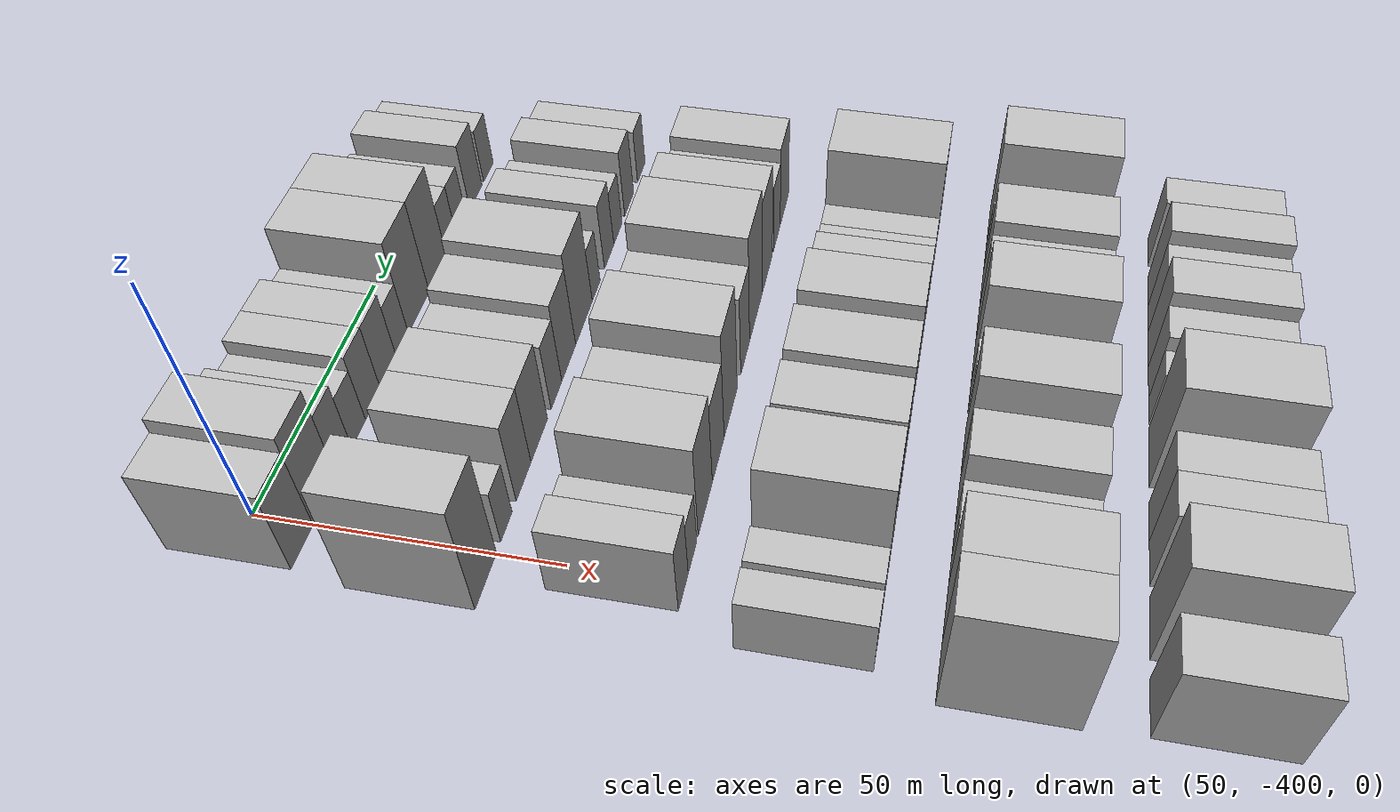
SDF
<sdf version="1.6">
 <world name="default">
  <model name="building_12">
   <static>1</static>
   <pose>50.0000 -404.1305 0 0.000000 0.000000 0.000000</pose>
   <link name="link">
    <pose>0 0 9.00 0 0 0</pose>
    <collision name="collision"><geometry><box><size>20.0000 8.0444 18.0000</size></box></geometry></collision>
    <visual name="visual">
     <cast_shadows>0</cast_shadows>
     <geometry><box><size>20.0000 8.0444 18.0000</size></box></geometry>
     <material>
      <script>
       <uri>model://HANNAS_wall/materials/scripts</uri>
       <uri>model://HANNAS_wall/materials/textures</uri>
       <name>vrc/HANNAS_wall</name>
      </script>
     </material>
    </visual>
   </link>
  </model>
  <model name="building_13">
   <static>1</static>
   <pose>50.0000 -395.5636 0 0.000000 0.000000 0.000000</pose>
   <link name="link">
    <pose>0 0 10.50 0 0 0</pose>
    <collision name="collision"><geometry><box><size>20.0000 9.0895 21.0000</size></box></geometry></collision>
    <visual name="visual">
     <cast_shadows>0</cast_shadows>
     <geometry><box><size>20.0000 9.0895 21.0000</size></box></geometry>
     <material>
      <script>
       <uri>model://HANNAS_wall/materials/scripts</uri>
       <uri>model://HANNAS_wall/materials/textures</uri>
       <name>vrc/HANNAS_wall</name>
      </script>
     </material>
    </visual>
   </link>
  </model>
  <model name="building_14">
   <static>1</static>
   <pose>50.0000 -387.9882 0 0.000000 0.000000 0.000000</pose>
   <link name="link">
    <pose>0 0 7.50 0 0 0</pose>
    <collision name="collision"><geometry><box><size>20.0000 6.0613 15.0000</size></box></geometry></collision>
    <visual name="visual">
     <cast_shadows>0</cast_shadows>
     <geometry><box><size>20.0000 6.0613 15.0000</size></box></geometry>
     <material>
      <script>
       <uri>model://HANNAS_wall/materials/scripts</uri>
       <uri>model://HANNAS_wall/materials/textures</uri>
       <name>vrc/HANNAS_wall</name>
      </script>
     </material>
    </visual>
   </link>
  </model>
  <model name="building_15">
   <static>1</static>
   <pose>50.0000 -382.0741 0 0.000000 0.000000 0.000000</pose>
   <link name="link">
    <pose>0 0 6.00 0 0 0</pose>
    <collision name="collision"><geometry><box><size>20.0000 5.7669 12.0000</size></box></geometry></collision>
    <visual name="visual">
     <cast_shadows>0</cast_shadows>
     <geometry><box><size>20.0000 5.7669 12.0000</size></box></geometry>
     <material>
      <script>
       <uri>model://HANNAS_wall/materials/scripts</uri>
       <uri>model://HANNAS_wall/materials/textures</uri>
       <name>vrc/HANNAS_wall</name>
      </script>
     </material>
    </visual>
   </link>
  </model>
  <model name="building_16">
   <static>1</static>
   <pose>50.0000 -375.9104 0 0.000000 0.000000 0.000000</pose>
   <link name="link">
    <pose>0 0 7.50 0 0 0</pose>
    <collision name="collision"><geometry><box><size>20.0000 6.5604 15.0000</size></box></geometry></collision>
    <visual name="visual">
     <cast_shadows>0</cast_shadows>
     <geometry><box><size>20.0000 6.5604 15.0000</size></box></geometry>
     <material>
      <script>
       <uri>model://HANNAS_wall/materials/scripts</uri>
       <uri>model://HANNAS_wall/materials/textures</uri>
       <name>vrc/HANNAS_wall</name>
      </script>
     </material>
    </visual>
   </link>
  </model>
  <model name="building_17">
   <static>1</static>
   <pose>50.0000 -369.0425 0 0.000000 0.000000 0.000000</pose>
   <link name="link">
    <pose>0 0 7.50 0 0 0</pose>
    <collision name="collision"><geometry><box><size>20.0000 7.1755 15.0000</size></box></geometry></collision>
    <visual name="visual">
     <cast_shadows>0</cast_shadows>
     <geometry><box><size>20.0000 7.1755 15.0000</size></box></geometry>
     <material>
      <script>
       <uri>model://HANNAS_wall/materials/scripts</uri>
       <uri>model://HANNAS_wall/materials/textures</uri>
       <name>vrc/HANNAS_wall</name>
      </script>
     </material>
    </visual>
   </link>
  </model>
  <model name="building_18">
   <static>1</static>
   <pose>50.0000 -362.6450 0 0.000000 0.000000 0.000000</pose>
   <link name="link">
    <pose>0 0 6.00 0 0 0</pose>
    <collision name="collision"><geometry><box><size>20.0000 5.6195 12.0000</size></box></geometry></collision>
    <visual name="visual">
     <cast_shadows>0</cast_shadows>
     <geometry><box><size>20.0000 5.6195 12.0000</size></box></geometry>
     <material>
      <script>
       <uri>model://HANNAS_wall/materials/scripts</uri>
       <uri>model://HANNAS_wall/materials/textures</uri>
       <name>vrc/HANNAS_wall</name>
      </script>
     </material>
    </visual>
   </link>
  </model>
  <model name="building_19">
   <static>1</static>
   <pose>50.0000 -354.7510 0 0.000000 0.000000 0.000000</pose>
   <link name="link">
    <pose>0 0 10.50 0 0 0</pose>
    <collision name="collision"><geometry><box><size>20.0000 10.1686 21.0000</size></box></geometry></collision>
    <visual name="visual">
     <cast_shadows>0</cast_shadows>
     <geometry><box><size>20.0000 10.1686 21.0000</size></box></geometry>
     <material>
      <script>
       <uri>model://HANNAS_wall/materials/scripts</uri>
       <uri>model://HANNAS_wall/materials/textures</uri>
       <name>vrc/HANNAS_wall</name>
      </script>
     </material>
    </visual>
   </link>
  </model>
  <model name="building_20">
   <static>1</static>
   <pose>50.0000 -345.1235 0 0.000000 0.000000 0.000000</pose>
   <link name="link">
    <pose>0 0 10.50 0 0 0</pose>
    <collision name="collision"><geometry><box><size>20.0000 9.0865 21.0000</size></box></geometry></collision>
    <visual name="visual">
     <cast_shadows>0</cast_shadows>
     <geometry><box><size>20.0000 9.0865 21.0000</size></box></geometry>
     <material>
      <script>
       <uri>model://HANNAS_wall/materials/scripts</uri>
       <uri>model://HANNAS_wall/materials/textures</uri>
       <name>vrc/HANNAS_wall</name>
      </script>
     </material>
    </visual>
   </link>
  </model>
  <model name="building_21">
   <static>1</static>
   <pose>50.0000 -337.9121 0 0.000000 0.000000 0.000000</pose>
   <link name="link">
    <pose>0 0 6.00 0 0 0</pose>
    <collision name="collision"><geometry><box><size>20.0000 5.3363 12.0000</size></box></geometry></collision>
    <visual name="visual">
     <cast_shadows>0</cast_shadows>
     <geometry><box><size>20.0000 5.3363 12.0000</size></box></geometry>
     <material>
      <script>
       <uri>model://HANNAS_wall/materials/scripts</uri>
       <uri>model://HANNAS_wall/materials/textures</uri>
       <name>vrc/HANNAS_wall</name>
      </script>
     </material>
    </visual>
   </link>
  </model>
  <model name="building_22">
   <static>1</static>
   <pose>50.0000 -332.4888 0 0.000000 0.000000 0.000000</pose>
   <link name="link">
    <pose>0 0 6.00 0 0 0</pose>
    <collision name="collision"><geometry><box><size>20.0000 5.5102 12.0000</size></box></geometry></collision>
    <visual name="visual">
     <cast_shadows>0</cast_shadows>
     <geometry><box><size>20.0000 5.5102 12.0000</size></box></geometry>
     <material>
      <script>
       <uri>model://HANNAS_wall/materials/scripts</uri>
       <uri>model://HANNAS_wall/materials/textures</uri>
       <name>vrc/HANNAS_wall</name>
      </script>
     </material>
    </visual>
   </link>
  </model>
  <model name="building_23">
   <static>1</static>
   <pose>50.0000 -324.2608 0 0.000000 0.000000 0.000000</pose>
   <link name="link">
    <pose>0 0 7.50 0 0 0</pose>
    <collision name="collision"><geometry><box><size>20.0000 6.9459 15.0000</size></box></geometry></collision>
    <visual name="visual">
     <cast_shadows>0</cast_shadows>
     <geometry><box><size>20.0000 6.9459 15.0000</size></box></geometry>
     <material>
      <script>
       <uri>model://HANNAS_wall/materials/scripts</uri>
       <uri>model://HANNAS_wall/materials/textures</uri>
       <name>vrc/HANNAS_wall</name>
      </script>
     </material>
    </visual>
   </link>
  </model>
  <model name="building_24">
   <static>1</static>
   <pose>50.0000 -316.9308 0 0.000000 0.000000 0.000000</pose>
   <link name="link">
    <pose>0 0 6.00 0 0 0</pose>
    <collision name="collision"><geometry><box><size>20.0000 5.7139 12.0000</size></box></geometry></collision>
    <visual name="visual">
     <cast_shadows>0</cast_shadows>
     <geometry><box><size>20.0000 5.7139 12.0000</size></box></geometry>
     <material>
      <script>
       <uri>model://HANNAS_wall/materials/scripts</uri>
       <uri>model://HANNAS_wall/materials/textures</uri>
       <name>vrc/HANNAS_wall</name>
      </script>
     </material>
    </visual>
   </link>
  </model>
  <model name="building_118">
   <static>1</static>
   <pose>79.0000 -404.7210 0 0.000000 0.000000 0.000000</pose>
   <link name="link">
    <pose>0 0 12.00 0 0 0</pose>
    <collision name="collision"><geometry><box><size>20.0000 9.8705 24.0000</size></box></geometry></collision>
    <visual name="visual">
     <cast_shadows>0</cast_shadows>
     <geometry><box><size>20.0000 9.8705 24.0000</size></box></geometry>
     <material>
      <script>
       <uri>model://HANNAS_wall/materials/scripts</uri>
       <uri>model://HANNAS_wall/materials/textures</uri>
       <name>vrc/HANNAS_wall</name>
      </script>
     </material>
    </visual>
   </link>
  </model>
  <model name="building_119">
   <static>1</static>
   <pose>79.0000 -395.0064 0 0.000000 0.000000 0.000000</pose>
   <link name="link">
    <pose>0 0 6.00 0 0 0</pose>
    <collision name="collision"><geometry><box><size>20.0000 5.5586 12.0000</size></box></geometry></collision>
    <visual name="visual">
     <cast_shadows>0</cast_shadows>
     <geometry><box><size>20.0000 5.5586 12.0000</size></box></geometry>
     <material>
      <script>
       <uri>model://HANNAS_wall/materials/scripts</uri>
       <uri>model://HANNAS_wall/materials/textures</uri>
       <name>vrc/HANNAS_wall</name>
      </script>
     </material>
    </visual>
   </link>
  </model>
  <model name="building_120">
   <static>1</static>
   <pose>79.0000 -386.3913 0 0.000000 0.000000 0.000000</pose>
   <link name="link">
    <pose>0 0 9.00 0 0 0</pose>
    <collision name="collision"><geometry><box><size>20.0000 7.6715 18.0000</size></box></geometry></collision>
    <visual name="visual">
     <cast_shadows>0</cast_shadows>
     <geometry><box><size>20.0000 7.6715 18.0000</size></box></geometry>
     <material>
      <script>
       <uri>model://HANNAS_wall/materials/scripts</uri>
       <uri>model://HANNAS_wall/materials/textures</uri>
       <name>vrc/HANNAS_wall</name>
      </script>
     </material>
    </visual>
   </link>
  </model>
  <model name="building_121">
   <static>1</static>
   <pose>79.0000 -378.0632 0 0.000000 0.000000 0.000000</pose>
   <link name="link">
    <pose>0 0 9.00 0 0 0</pose>
    <collision name="collision"><geometry><box><size>20.0000 8.9849 18.0000</size></box></geometry></collision>
    <visual name="visual">
     <cast_shadows>0</cast_shadows>
     <geometry><box><size>20.0000 8.9849 18.0000</size></box></geometry>
     <material>
      <script>
       <uri>model://HANNAS_wall/materials/scripts</uri>
       <uri>model://HANNAS_wall/materials/textures</uri>
       <name>vrc/HANNAS_wall</name>
      </script>
     </material>
    </visual>
   </link>
  </model>
  <model name="building_122">
   <static>1</static>
   <pose>79.0000 -368.4958 0 0.000000 0.000000 0.000000</pose>
   <link name="link">
    <pose>0 0 7.50 0 0 0</pose>
    <collision name="collision"><geometry><box><size>20.0000 6.1499 15.0000</size></box></geometry></collision>
    <visual name="visual">
     <cast_shadows>0</cast_shadows>
     <geometry><box><size>20.0000 6.1499 15.0000</size></box></geometry>
     <material>
      <script>
       <uri>model://HANNAS_wall/materials/scripts</uri>
       <uri>model://HANNAS_wall/materials/textures</uri>
       <name>vrc/HANNAS_wall</name>
      </script>
     </material>
    </visual>
   </link>
  </model>
  <model name="building_123">
   <static>1</static>
   <pose>79.0000 -361.2507 0 0.000000 0.000000 0.000000</pose>
   <link name="link">
    <pose>0 0 9.00 0 0 0</pose>
    <collision name="collision"><geometry><box><size>20.0000 8.3401 18.0000</size></box></geometry></collision>
    <visual name="visual">
     <cast_shadows>0</cast_shadows>
     <geometry><box><size>20.0000 8.3401 18.0000</size></box></geometry>
     <material>
      <script>
       <uri>model://HANNAS_wall/materials/scripts</uri>
       <uri>model://HANNAS_wall/materials/textures</uri>
       <name>vrc/HANNAS_wall</name>
      </script>
     </material>
    </visual>
   </link>
  </model>
  <model name="building_124">
   <static>1</static>
   <pose>79.0000 -351.8395 0 0.000000 0.000000 0.000000</pose>
   <link name="link">
    <pose>0 0 10.50 0 0 0</pose>
    <collision name="collision"><geometry><box><size>20.0000 10.4823 21.0000</size></box></geometry></collision>
    <visual name="visual">
     <cast_shadows>0</cast_shadows>
     <geometry><box><size>20.0000 10.4823 21.0000</size></box></geometry>
     <material>
      <script>
       <uri>model://HANNAS_wall/materials/scripts</uri>
       <uri>model://HANNAS_wall/materials/textures</uri>
       <name>vrc/HANNAS_wall</name>
      </script>
     </material>
    </visual>
   </link>
  </model>
  <model name="building_125">
   <static>1</static>
   <pose>79.0000 -344.0124 0 0.000000 0.000000 0.000000</pose>
   <link name="link">
    <pose>0 0 6.00 0 0 0</pose>
    <collision name="collision"><geometry><box><size>20.0000 5.1720 12.0000</size></box></geometry></collision>
    <visual name="visual">
     <cast_shadows>0</cast_shadows>
     <geometry><box><size>20.0000 5.1720 12.0000</size></box></geometry>
     <material>
      <script>
       <uri>model://HANNAS_wall/materials/scripts</uri>
       <uri>model://HANNAS_wall/materials/textures</uri>
       <name>vrc/HANNAS_wall</name>
      </script>
     </material>
    </visual>
   </link>
  </model>
  <model name="building_126">
   <static>1</static>
   <pose>79.0000 -335.1673 0 0.000000 0.000000 0.000000</pose>
   <link name="link">
    <pose>0 0 7.50 0 0 0</pose>
    <collision name="collision"><geometry><box><size>20.0000 6.5182 15.0000</size></box></geometry></collision>
    <visual name="visual">
     <cast_shadows>0</cast_shadows>
     <geometry><box><size>20.0000 6.5182 15.0000</size></box></geometry>
     <material>
      <script>
       <uri>model://HANNAS_wall/materials/scripts</uri>
       <uri>model://HANNAS_wall/materials/textures</uri>
       <name>vrc/HANNAS_wall</name>
      </script>
     </material>
    </visual>
   </link>
  </model>
  <model name="building_127">
   <static>1</static>
   <pose>79.0000 -329.0076 0 0.000000 0.000000 0.000000</pose>
   <link name="link">
    <pose>0 0 6.00 0 0 0</pose>
    <collision name="collision"><geometry><box><size>20.0000 5.8012 12.0000</size></box></geometry></collision>
    <visual name="visual">
     <cast_shadows>0</cast_shadows>
     <geometry><box><size>20.0000 5.8012 12.0000</size></box></geometry>
     <material>
      <script>
       <uri>model://HANNAS_wall/materials/scripts</uri>
       <uri>model://HANNAS_wall/materials/textures</uri>
       <name>vrc/HANNAS_wall</name>
      </script>
     </material>
    </visual>
   </link>
  </model>
  <model name="building_128">
   <static>1</static>
   <pose>79.0000 -320.7676 0 0.000000 0.000000 0.000000</pose>
   <link name="link">
    <pose>0 0 7.50 0 0 0</pose>
    <collision name="collision"><geometry><box><size>20.0000 6.6788 15.0000</size></box></geometry></collision>
    <visual name="visual">
     <cast_shadows>0</cast_shadows>
     <geometry><box><size>20.0000 6.6788 15.0000</size></box></geometry>
     <material>
      <script>
       <uri>model://HANNAS_wall/materials/scripts</uri>
       <uri>model://HANNAS_wall/materials/textures</uri>
       <name>vrc/HANNAS_wall</name>
      </script>
     </material>
    </visual>
   </link>
  </model>
  <model name="building_129">
   <static>1</static>
   <pose>79.0000 -311.4818 0 0.000000 0.000000 0.000000</pose>
   <link name="link">
    <pose>0 0 6.00 0 0 0</pose>
    <collision name="collision"><geometry><box><size>20.0000 5.8927 12.0000</size></box></geometry></collision>
    <visual name="visual">
     <cast_shadows>0</cast_shadows>
     <geometry><box><size>20.0000 5.8927 12.0000</size></box></geometry>
     <material>
      <script>
       <uri>model://HANNAS_wall/materials/scripts</uri>
       <uri>model://HANNAS_wall/materials/textures</uri>
       <name>vrc/HANNAS_wall</name>
      </script>
     </material>
    </visual>
   </link>
  </model>
  <model name="building_235">
   <static>1</static>
   <pose>108.0000 -401.2465 0 0.000000 0.000000 0.000000</pose>
   <link name="link">
    <pose>0 0 7.50 0 0 0</pose>
    <collision name="collision"><geometry><box><size>20.0000 6.4250 15.0000</size></box></geometry></collision>
    <visual name="visual">
     <cast_shadows>0</cast_shadows>
     <geometry><box><size>20.0000 6.4250 15.0000</size></box></geometry>
     <material>
      <script>
       <uri>model://HANNAS_wall/materials/scripts</uri>
       <uri>model://HANNAS_wall/materials/textures</uri>
       <name>vrc/HANNAS_wall</name>
      </script>
     </material>
    </visual>
   </link>
  </model>
  <model name="building_236">
   <static>1</static>
   <pose>108.0000 -395.1579 0 0.000000 0.000000 0.000000</pose>
   <link name="link">
    <pose>0 0 6.00 0 0 0</pose>
    <collision name="collision"><geometry><box><size>20.0000 5.7523 12.0000</size></box></geometry></collision>
    <visual name="visual">
     <cast_shadows>0</cast_shadows>
     <geometry><box><size>20.0000 5.7523 12.0000</size></box></geometry>
     <material>
      <script>
       <uri>model://HANNAS_wall/materials/scripts</uri>
       <uri>model://HANNAS_wall/materials/textures</uri>
       <name>vrc/HANNAS_wall</name>
      </script>
     </material>
    </visual>
   </link>
  </model>
  <model name="building_237">
   <static>1</static>
   <pose>108.0000 -386.1965 0 0.000000 0.000000 0.000000</pose>
   <link name="link">
    <pose>0 0 10.50 0 0 0</pose>
    <collision name="collision"><geometry><box><size>20.0000 10.1705 21.0000</size></box></geometry></collision>
    <visual name="visual">
     <cast_shadows>0</cast_shadows>
     <geometry><box><size>20.0000 10.1705 21.0000</size></box></geometry>
     <material>
      <script>
       <uri>model://HANNAS_wall/materials/scripts</uri>
       <uri>model://HANNAS_wall/materials/textures</uri>
       <name>vrc/HANNAS_wall</name>
      </script>
     </material>
    </visual>
   </link>
  </model>
  <model name="building_238">
   <static>1</static>
   <pose>108.0000 -376.6138 0 0.000000 0.000000 0.000000</pose>
   <link name="link">
    <pose>0 0 9.00 0 0 0</pose>
    <collision name="collision"><geometry><box><size>20.0000 8.9950 18.0000</size></box></geometry></collision>
    <visual name="visual">
     <cast_shadows>0</cast_shadows>
     <geometry><box><size>20.0000 8.9950 18.0000</size></box></geometry>
     <material>
      <script>
       <uri>model://HANNAS_wall/materials/scripts</uri>
       <uri>model://HANNAS_wall/materials/textures</uri>
       <name>vrc/HANNAS_wall</name>
      </script>
     </material>
    </visual>
   </link>
  </model>
  <model name="building_239">
   <static>1</static>
   <pose>108.0000 -366.8445 0 0.000000 0.000000 0.000000</pose>
   <link name="link">
    <pose>0 0 12.00 0 0 0</pose>
    <collision name="collision"><geometry><box><size>20.0000 10.5434 24.0000</size></box></geometry></collision>
    <visual name="visual">
     <cast_shadows>0</cast_shadows>
     <geometry><box><size>20.0000 10.5434 24.0000</size></box></geometry>
     <material>
      <script>
       <uri>model://HANNAS_wall/materials/scripts</uri>
       <uri>model://HANNAS_wall/materials/textures</uri>
       <name>vrc/HANNAS_wall</name>
      </script>
     </material>
    </visual>
   </link>
  </model>
  <model name="building_240">
   <static>1</static>
   <pose>108.0000 -354.7363 0 0.000000 0.000000 0.000000</pose>
   <link name="link">
    <pose>0 0 9.00 0 0 0</pose>
    <collision name="collision"><geometry><box><size>20.0000 7.6730 18.0000</size></box></geometry></collision>
    <visual name="visual">
     <cast_shadows>0</cast_shadows>
     <geometry><box><size>20.0000 7.6730 18.0000</size></box></geometry>
     <material>
      <script>
       <uri>model://HANNAS_wall/materials/scripts</uri>
       <uri>model://HANNAS_wall/materials/textures</uri>
       <name>vrc/HANNAS_wall</name>
      </script>
     </material>
    </visual>
   </link>
  </model>
  <model name="building_241">
   <static>1</static>
   <pose>108.0000 -345.0989 0 0.000000 0.000000 0.000000</pose>
   <link name="link">
    <pose>0 0 12.00 0 0 0</pose>
    <collision name="collision"><geometry><box><size>20.0000 11.6019 24.0000</size></box></geometry></collision>
    <visual name="visual">
     <cast_shadows>0</cast_shadows>
     <geometry><box><size>20.0000 11.6019 24.0000</size></box></geometry>
     <material>
      <script>
       <uri>model://HANNAS_wall/materials/scripts</uri>
       <uri>model://HANNAS_wall/materials/textures</uri>
       <name>vrc/HANNAS_wall</name>
      </script>
     </material>
    </visual>
   </link>
  </model>
  <model name="building_242">
   <static>1</static>
   <pose>108.0000 -334.3625 0 0.000000 0.000000 0.000000</pose>
   <link name="link">
    <pose>0 0 10.50 0 0 0</pose>
    <collision name="collision"><geometry><box><size>20.0000 9.8709 21.0000</size></box></geometry></collision>
    <visual name="visual">
     <cast_shadows>0</cast_shadows>
     <geometry><box><size>20.0000 9.8709 21.0000</size></box></geometry>
     <material>
      <script>
       <uri>model://HANNAS_wall/materials/scripts</uri>
       <uri>model://HANNAS_wall/materials/textures</uri>
       <name>vrc/HANNAS_wall</name>
      </script>
     </material>
    </visual>
   </link>
  </model>
  <model name="building_243">
   <static>1</static>
   <pose>108.0000 -324.9108 0 0.000000 0.000000 0.000000</pose>
   <link name="link">
    <pose>0 0 7.50 0 0 0</pose>
    <collision name="collision"><geometry><box><size>20.0000 7.0324 15.0000</size></box></geometry></collision>
    <visual name="visual">
     <cast_shadows>0</cast_shadows>
     <geometry><box><size>20.0000 7.0324 15.0000</size></box></geometry>
     <material>
      <script>
       <uri>model://HANNAS_wall/materials/scripts</uri>
       <uri>model://HANNAS_wall/materials/textures</uri>
       <name>vrc/HANNAS_wall</name>
      </script>
     </material>
    </visual>
   </link>
  </model>
  <model name="building_244">
   <static>1</static>
   <pose>108.0000 -316.9666 0 0.000000 0.000000 0.000000</pose>
   <link name="link">
    <pose>0 0 9.00 0 0 0</pose>
    <collision name="collision"><geometry><box><size>20.0000 8.8561 18.0000</size></box></geometry></collision>
    <visual name="visual">
     <cast_shadows>0</cast_shadows>
     <geometry><box><size>20.0000 8.8561 18.0000</size></box></geometry>
     <material>
      <script>
       <uri>model://HANNAS_wall/materials/scripts</uri>
       <uri>model://HANNAS_wall/materials/textures</uri>
       <name>vrc/HANNAS_wall</name>
      </script>
     </material>
    </visual>
   </link>
  </model>
  <model name="building_347">
   <static>1</static>
   <pose>137.0000 -405.8618 0 0.000000 0.000000 0.000000</pose>
   <link name="link">
    <pose>0 0 6.00 0 0 0</pose>
    <collision name="collision"><geometry><box><size>20.0000 5.9171 12.0000</size></box></geometry></collision>
    <visual name="visual">
     <cast_shadows>0</cast_shadows>
     <geometry><box><size>20.0000 5.9171 12.0000</size></box></geometry>
     <material>
      <script>
       <uri>model://HANNAS_wall/materials/scripts</uri>
       <uri>model://HANNAS_wall/materials/textures</uri>
       <name>vrc/HANNAS_wall</name>
      </script>
     </material>
    </visual>
   </link>
  </model>
  <model name="building_348">
   <static>1</static>
   <pose>137.0000 -398.9384 0 0.000000 0.000000 0.000000</pose>
   <link name="link">
    <pose>0 0 6.00 0 0 0</pose>
    <collision name="collision"><geometry><box><size>20.0000 5.9296 12.0000</size></box></geometry></collision>
    <visual name="visual">
     <cast_shadows>0</cast_shadows>
     <geometry><box><size>20.0000 5.9296 12.0000</size></box></geometry>
     <material>
      <script>
       <uri>model://HANNAS_wall/materials/scripts</uri>
       <uri>model://HANNAS_wall/materials/textures</uri>
       <name>vrc/HANNAS_wall</name>
      </script>
     </material>
    </visual>
   </link>
  </model>
  <model name="building_349">
   <static>1</static>
   <pose>137.0000 -389.3503 0 0.000000 0.000000 0.000000</pose>
   <link name="link">
    <pose>0 0 12.00 0 0 0</pose>
    <collision name="collision"><geometry><box><size>20.0000 11.2467 24.0000</size></box></geometry></collision>
    <visual name="visual">
     <cast_shadows>0</cast_shadows>
     <geometry><box><size>20.0000 11.2467 24.0000</size></box></geometry>
     <material>
      <script>
       <uri>model://HANNAS_wall/materials/scripts</uri>
       <uri>model://HANNAS_wall/materials/textures</uri>
       <name>vrc/HANNAS_wall</name>
      </script>
     </material>
    </visual>
   </link>
  </model>
  <model name="building_350">
   <static>1</static>
   <pose>137.0000 -376.4297 0 0.000000 0.000000 0.000000</pose>
   <link name="link">
    <pose>0 0 10.50 0 0 0</pose>
    <collision name="collision"><geometry><box><size>20.0000 8.5944 21.0000</size></box></geometry></collision>
    <visual name="visual">
     <cast_shadows>0</cast_shadows>
     <geometry><box><size>20.0000 8.5944 21.0000</size></box></geometry>
     <material>
      <script>
       <uri>model://HANNAS_wall/materials/scripts</uri>
       <uri>model://HANNAS_wall/materials/textures</uri>
       <name>vrc/HANNAS_wall</name>
      </script>
     </material>
    </visual>
   </link>
  </model>
  <model name="building_351">
   <static>1</static>
   <pose>137.0000 -365.3390 0 0.000000 0.000000 0.000000</pose>
   <link name="link">
    <pose>0 0 10.50 0 0 0</pose>
    <collision name="collision"><geometry><box><size>20.0000 9.5871 21.0000</size></box></geometry></collision>
    <visual name="visual">
     <cast_shadows>0</cast_shadows>
     <geometry><box><size>20.0000 9.5871 21.0000</size></box></geometry>
     <material>
      <script>
       <uri>model://HANNAS_wall/materials/scripts</uri>
       <uri>model://HANNAS_wall/materials/textures</uri>
       <name>vrc/HANNAS_wall</name>
      </script>
     </material>
    </visual>
   </link>
  </model>
  <model name="building_352">
   <static>1</static>
   <pose>137.0000 -352.7596 0 0.000000 0.000000 0.000000</pose>
   <link name="link">
    <pose>0 0 10.50 0 0 0</pose>
    <collision name="collision"><geometry><box><size>20.0000 9.5716 21.0000</size></box></geometry></collision>
    <visual name="visual">
     <cast_shadows>0</cast_shadows>
     <geometry><box><size>20.0000 9.5716 21.0000</size></box></geometry>
     <material>
      <script>
       <uri>model://HANNAS_wall/materials/scripts</uri>
       <uri>model://HANNAS_wall/materials/textures</uri>
       <name>vrc/HANNAS_wall</name>
      </script>
     </material>
    </visual>
   </link>
  </model>
  <model name="building_353">
   <static>1</static>
   <pose>137.0000 -341.2502 0 0.000000 0.000000 0.000000</pose>
   <link name="link">
    <pose>0 0 7.50 0 0 0</pose>
    <collision name="collision"><geometry><box><size>20.0000 7.4472 15.0000</size></box></geometry></collision>
    <visual name="visual">
     <cast_shadows>0</cast_shadows>
     <geometry><box><size>20.0000 7.4472 15.0000</size></box></geometry>
     <material>
      <script>
       <uri>model://HANNAS_wall/materials/scripts</uri>
       <uri>model://HANNAS_wall/materials/textures</uri>
       <name>vrc/HANNAS_wall</name>
      </script>
     </material>
    </visual>
   </link>
  </model>
  <model name="building_354">
   <static>1</static>
   <pose>137.0000 -334.9260 0 0.000000 0.000000 0.000000</pose>
   <link name="link">
    <pose>0 0 6.00 0 0 0</pose>
    <collision name="collision"><geometry><box><size>20.0000 5.2013 12.0000</size></box></geometry></collision>
    <visual name="visual">
     <cast_shadows>0</cast_shadows>
     <geometry><box><size>20.0000 5.2013 12.0000</size></box></geometry>
     <material>
      <script>
       <uri>model://HANNAS_wall/materials/scripts</uri>
       <uri>model://HANNAS_wall/materials/textures</uri>
       <name>vrc/HANNAS_wall</name>
      </script>
     </material>
    </visual>
   </link>
  </model>
  <model name="building_355">
   <static>1</static>
   <pose>137.0000 -329.7661 0 0.000000 0.000000 0.000000</pose>
   <link name="link">
    <pose>0 0 6.00 0 0 0</pose>
    <collision name="collision"><geometry><box><size>20.0000 5.1185 12.0000</size></box></geometry></collision>
    <visual name="visual">
     <cast_shadows>0</cast_shadows>
     <geometry><box><size>20.0000 5.1185 12.0000</size></box></geometry>
     <material>
      <script>
       <uri>model://HANNAS_wall/materials/scripts</uri>
       <uri>model://HANNAS_wall/materials/textures</uri>
       <name>vrc/HANNAS_wall</name>
      </script>
     </material>
    </visual>
   </link>
  </model>
  <model name="building_356">
   <static>1</static>
   <pose>137.0000 -321.5423 0 0.000000 0.000000 0.000000</pose>
   <link name="link">
    <pose>0 0 12.00 0 0 0</pose>
    <collision name="collision"><geometry><box><size>20.0000 11.3291 24.0000</size></box></geometry></collision>
    <visual name="visual">
     <cast_shadows>0</cast_shadows>
     <geometry><box><size>20.0000 11.3291 24.0000</size></box></geometry>
     <material>
      <script>
       <uri>model://HANNAS_wall/materials/scripts</uri>
       <uri>model://HANNAS_wall/materials/textures</uri>
       <name>vrc/HANNAS_wall</name>
      </script>
     </material>
    </visual>
   </link>
  </model>
  <model name="building_459">
   <static>1</static>
   <pose>166.0000 -407.5253 0 0.000000 0.000000 0.000000</pose>
   <link name="link">
    <pose>0 0 12.00 0 0 0</pose>
    <collision name="collision"><geometry><box><size>20.0000 9.6221 24.0000</size></box></geometry></collision>
    <visual name="visual">
     <cast_shadows>0</cast_shadows>
     <geometry><box><size>20.0000 9.6221 24.0000</size></box></geometry>
     <material>
      <script>
       <uri>model://HANNAS_wall/materials/scripts</uri>
       <uri>model://HANNAS_wall/materials/textures</uri>
       <name>vrc/HANNAS_wall</name>
      </script>
     </material>
    </visual>
   </link>
  </model>
  <model name="building_460">
   <static>1</static>
   <pose>166.0000 -397.8883 0 0.000000 0.000000 0.000000</pose>
   <link name="link">
    <pose>0 0 12.00 0 0 0</pose>
    <collision name="collision"><geometry><box><size>20.0000 9.6518 24.0000</size></box></geometry></collision>
    <visual name="visual">
     <cast_shadows>0</cast_shadows>
     <geometry><box><size>20.0000 9.6518 24.0000</size></box></geometry>
     <material>
      <script>
       <uri>model://HANNAS_wall/materials/scripts</uri>
       <uri>model://HANNAS_wall/materials/textures</uri>
       <name>vrc/HANNAS_wall</name>
      </script>
     </material>
    </visual>
   </link>
  </model>
  <model name="building_461">
   <static>1</static>
   <pose>166.0000 -390.5786 0 0.000000 0.000000 0.000000</pose>
   <link name="link">
    <pose>0 0 6.00 0 0 0</pose>
    <collision name="collision"><geometry><box><size>20.0000 4.9676 12.0000</size></box></geometry></collision>
    <visual name="visual">
     <cast_shadows>0</cast_shadows>
     <geometry><box><size>20.0000 4.9676 12.0000</size></box></geometry>
     <material>
      <script>
       <uri>model://HANNAS_wall/materials/scripts</uri>
       <uri>model://HANNAS_wall/materials/textures</uri>
       <name>vrc/HANNAS_wall</name>
      </script>
     </material>
    </visual>
   </link>
  </model>
  <model name="building_462">
   <static>1</static>
   <pose>166.0000 -385.2108 0 0.000000 0.000000 0.000000</pose>
   <link name="link">
    <pose>0 0 6.00 0 0 0</pose>
    <collision name="collision"><geometry><box><size>20.0000 5.7679 12.0000</size></box></geometry></collision>
    <visual name="visual">
     <cast_shadows>0</cast_shadows>
     <geometry><box><size>20.0000 5.7679 12.0000</size></box></geometry>
     <material>
      <script>
       <uri>model://HANNAS_wall/materials/scripts</uri>
       <uri>model://HANNAS_wall/materials/textures</uri>
       <name>vrc/HANNAS_wall</name>
      </script>
     </material>
    </visual>
   </link>
  </model>
  <model name="building_463">
   <static>1</static>
   <pose>166.0000 -377.9417 0 0.000000 0.000000 0.000000</pose>
   <link name="link">
    <pose>0 0 9.00 0 0 0</pose>
    <collision name="collision"><geometry><box><size>20.0000 8.7702 18.0000</size></box></geometry></collision>
    <visual name="visual">
     <cast_shadows>0</cast_shadows>
     <geometry><box><size>20.0000 8.7702 18.0000</size></box></geometry>
     <material>
      <script>
       <uri>model://HANNAS_wall/materials/scripts</uri>
       <uri>model://HANNAS_wall/materials/textures</uri>
       <name>vrc/HANNAS_wall</name>
      </script>
     </material>
    </visual>
   </link>
  </model>
  <model name="building_464">
   <static>1</static>
   <pose>166.0000 -367.6510 0 0.000000 0.000000 0.000000</pose>
   <link name="link">
    <pose>0 0 12.00 0 0 0</pose>
    <collision name="collision"><geometry><box><size>20.0000 9.8113 24.0000</size></box></geometry></collision>
    <visual name="visual">
     <cast_shadows>0</cast_shadows>
     <geometry><box><size>20.0000 9.8113 24.0000</size></box></geometry>
     <material>
      <script>
       <uri>model://HANNAS_wall/materials/scripts</uri>
       <uri>model://HANNAS_wall/materials/textures</uri>
       <name>vrc/HANNAS_wall</name>
      </script>
     </material>
    </visual>
   </link>
  </model>
  <model name="building_465">
   <static>1</static>
   <pose>166.0000 -356.9205 0 0.000000 0.000000 0.000000</pose>
   <link name="link">
    <pose>0 0 6.00 0 0 0</pose>
    <collision name="collision"><geometry><box><size>20.0000 5.6498 12.0000</size></box></geometry></collision>
    <visual name="visual">
     <cast_shadows>0</cast_shadows>
     <geometry><box><size>20.0000 5.6498 12.0000</size></box></geometry>
     <material>
      <script>
       <uri>model://HANNAS_wall/materials/scripts</uri>
       <uri>model://HANNAS_wall/materials/textures</uri>
       <name>vrc/HANNAS_wall</name>
      </script>
     </material>
    </visual>
   </link>
  </model>
  <model name="building_466">
   <static>1</static>
   <pose>166.0000 -349.0830 0 0.000000 0.000000 0.000000</pose>
   <link name="link">
    <pose>0 0 12.00 0 0 0</pose>
    <collision name="collision"><geometry><box><size>20.0000 10.0250 24.0000</size></box></geometry></collision>
    <visual name="visual">
     <cast_shadows>0</cast_shadows>
     <geometry><box><size>20.0000 10.0250 24.0000</size></box></geometry>
     <material>
      <script>
       <uri>model://HANNAS_wall/materials/scripts</uri>
       <uri>model://HANNAS_wall/materials/textures</uri>
       <name>vrc/HANNAS_wall</name>
      </script>
     </material>
    </visual>
   </link>
  </model>
  <model name="building_467">
   <static>1</static>
   <pose>166.0000 -340.1658 0 0.000000 0.000000 0.000000</pose>
   <link name="link">
    <pose>0 0 9.00 0 0 0</pose>
    <collision name="collision"><geometry><box><size>20.0000 7.8094 18.0000</size></box></geometry></collision>
    <visual name="visual">
     <cast_shadows>0</cast_shadows>
     <geometry><box><size>20.0000 7.8094 18.0000</size></box></geometry>
     <material>
      <script>
       <uri>model://HANNAS_wall/materials/scripts</uri>
       <uri>model://HANNAS_wall/materials/textures</uri>
       <name>vrc/HANNAS_wall</name>
      </script>
     </material>
    </visual>
   </link>
  </model>
  <model name="building_468">
   <static>1</static>
   <pose>166.0000 -331.4288 0 0.000000 0.000000 0.000000</pose>
   <link name="link">
    <pose>0 0 10.50 0 0 0</pose>
    <collision name="collision"><geometry><box><size>20.0000 9.6647 21.0000</size></box></geometry></collision>
    <visual name="visual">
     <cast_shadows>0</cast_shadows>
     <geometry><box><size>20.0000 9.6647 21.0000</size></box></geometry>
     <material>
      <script>
       <uri>model://HANNAS_wall/materials/scripts</uri>
       <uri>model://HANNAS_wall/materials/textures</uri>
       <name>vrc/HANNAS_wall</name>
      </script>
     </material>
    </visual>
   </link>
  </model>
  <model name="building_469">
   <static>1</static>
   <pose>166.0000 -323.8087 0 0.000000 0.000000 0.000000</pose>
   <link name="link">
    <pose>0 0 6.00 0 0 0</pose>
    <collision name="collision"><geometry><box><size>20.0000 5.5755 12.0000</size></box></geometry></collision>
    <visual name="visual">
     <cast_shadows>0</cast_shadows>
     <geometry><box><size>20.0000 5.5755 12.0000</size></box></geometry>
     <material>
      <script>
       <uri>model://HANNAS_wall/materials/scripts</uri>
       <uri>model://HANNAS_wall/materials/textures</uri>
       <name>vrc/HANNAS_wall</name>
      </script>
     </material>
    </visual>
   </link>
  </model>
  <model name="building_470">
   <static>1</static>
   <pose>166.0000 -314.7584 0 0.000000 0.000000 0.000000</pose>
   <link name="link">
    <pose>0 0 12.00 0 0 0</pose>
    <collision name="collision"><geometry><box><size>20.0000 10.5251 24.0000</size></box></geometry></collision>
    <visual name="visual">
     <cast_shadows>0</cast_shadows>
     <geometry><box><size>20.0000 10.5251 24.0000</size></box></geometry>
     <material>
      <script>
       <uri>model://HANNAS_wall/materials/scripts</uri>
       <uri>model://HANNAS_wall/materials/textures</uri>
       <name>vrc/HANNAS_wall</name>
      </script>
     </material>
    </visual>
   </link>
  </model>
  <model name="building_571">
   <static>1</static>
   <pose>195.0000 -407.3017 0 0.000000 0.000000 0.000000</pose>
   <link name="link">
    <pose>0 0 9.00 0 0 0</pose>
    <collision name="collision"><geometry><box><size>20.0000 8.9572 18.0000</size></box></geometry></collision>
    <visual name="visual">
     <cast_shadows>0</cast_shadows>
     <geometry><box><size>20.0000 8.9572 18.0000</size></box></geometry>
     <material>
      <script>
       <uri>model://HANNAS_wall/materials/scripts</uri>
       <uri>model://HANNAS_wall/materials/textures</uri>
       <name>vrc/HANNAS_wall</name>
      </script>
     </material>
    </visual>
   </link>
  </model>
  <model name="building_572">
   <static>1</static>
   <pose>195.0000 -394.6974 0 0.000000 0.000000 0.000000</pose>
   <link name="link">
    <pose>0 0 12.00 0 0 0</pose>
    <collision name="collision"><geometry><box><size>20.0000 10.2513 24.0000</size></box></geometry></collision>
    <visual name="visual">
     <cast_shadows>0</cast_shadows>
     <geometry><box><size>20.0000 10.2513 24.0000</size></box></geometry>
     <material>
      <script>
       <uri>model://HANNAS_wall/materials/scripts</uri>
       <uri>model://HANNAS_wall/materials/textures</uri>
       <name>vrc/HANNAS_wall</name>
      </script>
     </material>
    </visual>
   </link>
  </model>
  <model name="building_573">
   <static>1</static>
   <pose>195.0000 -383.6143 0 0.000000 0.000000 0.000000</pose>
   <link name="link">
    <pose>0 0 9.00 0 0 0</pose>
    <collision name="collision"><geometry><box><size>20.0000 7.9151 18.0000</size></box></geometry></collision>
    <visual name="visual">
     <cast_shadows>0</cast_shadows>
     <geometry><box><size>20.0000 7.9151 18.0000</size></box></geometry>
     <material>
      <script>
       <uri>model://HANNAS_wall/materials/scripts</uri>
       <uri>model://HANNAS_wall/materials/textures</uri>
       <name>vrc/HANNAS_wall</name>
      </script>
     </material>
    </visual>
   </link>
  </model>
  <model name="building_574">
   <static>1</static>
   <pose>195.0000 -376.0552 0 0.000000 0.000000 0.000000</pose>
   <link name="link">
    <pose>0 0 9.00 0 0 0</pose>
    <collision name="collision"><geometry><box><size>20.0000 7.2030 18.0000</size></box></geometry></collision>
    <visual name="visual">
     <cast_shadows>0</cast_shadows>
     <geometry><box><size>20.0000 7.2030 18.0000</size></box></geometry>
     <material>
      <script>
       <uri>model://HANNAS_wall/materials/scripts</uri>
       <uri>model://HANNAS_wall/materials/textures</uri>
       <name>vrc/HANNAS_wall</name>
      </script>
     </material>
    </visual>
   </link>
  </model>
  <model name="building_575">
   <static>1</static>
   <pose>195.0000 -363.5655 0 0.000000 0.000000 0.000000</pose>
   <link name="link">
    <pose>0 0 12.00 0 0 0</pose>
    <collision name="collision"><geometry><box><size>20.0000 11.7764 24.0000</size></box></geometry></collision>
    <visual name="visual">
     <cast_shadows>0</cast_shadows>
     <geometry><box><size>20.0000 11.7764 24.0000</size></box></geometry>
     <material>
      <script>
       <uri>model://HANNAS_wall/materials/scripts</uri>
       <uri>model://HANNAS_wall/materials/textures</uri>
       <name>vrc/HANNAS_wall</name>
      </script>
     </material>
    </visual>
   </link>
  </model>
  <model name="building_576">
   <static>1</static>
   <pose>195.0000 -353.9579 0 0.000000 0.000000 0.000000</pose>
   <link name="link">
    <pose>0 0 6.00 0 0 0</pose>
    <collision name="collision"><geometry><box><size>20.0000 5.4389 12.0000</size></box></geometry></collision>
    <visual name="visual">
     <cast_shadows>0</cast_shadows>
     <geometry><box><size>20.0000 5.4389 12.0000</size></box></geometry>
     <material>
      <script>
       <uri>model://HANNAS_wall/materials/scripts</uri>
       <uri>model://HANNAS_wall/materials/textures</uri>
       <name>vrc/HANNAS_wall</name>
      </script>
     </material>
    </visual>
   </link>
  </model>
  <model name="building_577">
   <static>1</static>
   <pose>195.0000 -347.7343 0 0.000000 0.000000 0.000000</pose>
   <link name="link">
    <pose>0 0 7.50 0 0 0</pose>
    <collision name="collision"><geometry><box><size>20.0000 7.0082 15.0000</size></box></geometry></collision>
    <visual name="visual">
     <cast_shadows>0</cast_shadows>
     <geometry><box><size>20.0000 7.0082 15.0000</size></box></geometry>
     <material>
      <script>
       <uri>model://HANNAS_wall/materials/scripts</uri>
       <uri>model://HANNAS_wall/materials/textures</uri>
       <name>vrc/HANNAS_wall</name>
      </script>
     </material>
    </visual>
   </link>
  </model>
  <model name="building_578">
   <static>1</static>
   <pose>195.0000 -340.1681 0 0.000000 0.000000 0.000000</pose>
   <link name="link">
    <pose>0 0 9.00 0 0 0</pose>
    <collision name="collision"><geometry><box><size>20.0000 8.1242 18.0000</size></box></geometry></collision>
    <visual name="visual">
     <cast_shadows>0</cast_shadows>
     <geometry><box><size>20.0000 8.1242 18.0000</size></box></geometry>
     <material>
      <script>
       <uri>model://HANNAS_wall/materials/scripts</uri>
       <uri>model://HANNAS_wall/materials/textures</uri>
       <name>vrc/HANNAS_wall</name>
      </script>
     </material>
    </visual>
   </link>
  </model>
  <model name="building_579">
   <static>1</static>
   <pose>195.0000 -332.9666 0 0.000000 0.000000 0.000000</pose>
   <link name="link">
    <pose>0 0 7.50 0 0 0</pose>
    <collision name="collision"><geometry><box><size>20.0000 6.2787 15.0000</size></box></geometry></collision>
    <visual name="visual">
     <cast_shadows>0</cast_shadows>
     <geometry><box><size>20.0000 6.2787 15.0000</size></box></geometry>
     <material>
      <script>
       <uri>model://HANNAS_wall/materials/scripts</uri>
       <uri>model://HANNAS_wall/materials/textures</uri>
       <name>vrc/HANNAS_wall</name>
      </script>
     </material>
    </visual>
   </link>
  </model>
  <model name="building_580">
   <static>1</static>
   <pose>195.0000 -326.1938 0 0.000000 0.000000 0.000000</pose>
   <link name="link">
    <pose>0 0 9.00 0 0 0</pose>
    <collision name="collision"><geometry><box><size>20.0000 7.2668 18.0000</size></box></geometry></collision>
    <visual name="visual">
     <cast_shadows>0</cast_shadows>
     <geometry><box><size>20.0000 7.2668 18.0000</size></box></geometry>
     <material>
      <script>
       <uri>model://HANNAS_wall/materials/scripts</uri>
       <uri>model://HANNAS_wall/materials/textures</uri>
       <name>vrc/HANNAS_wall</name>
      </script>
     </material>
    </visual>
   </link>
  </model>
  <model name="building_581">
   <static>1</static>
   <pose>195.0000 -316.1202 0 0.000000 0.000000 0.000000</pose>
   <link name="link">
    <pose>0 0 7.50 0 0 0</pose>
    <collision name="collision"><geometry><box><size>20.0000 6.8804 15.0000</size></box></geometry></collision>
    <visual name="visual">
     <cast_shadows>0</cast_shadows>
     <geometry><box><size>20.0000 6.8804 15.0000</size></box></geometry>
     <material>
      <script>
       <uri>model://HANNAS_wall/materials/scripts</uri>
       <uri>model://HANNAS_wall/materials/textures</uri>
       <name>vrc/HANNAS_wall</name>
      </script>
     </material>
    </visual>
   </link>
  </model>
 </world>
</sdf>
